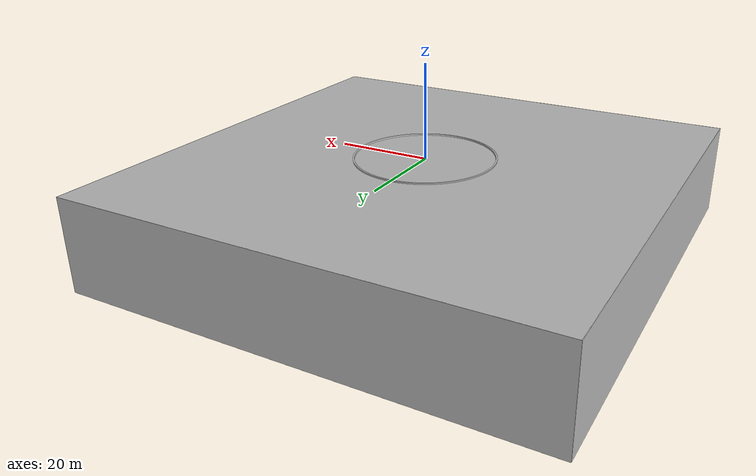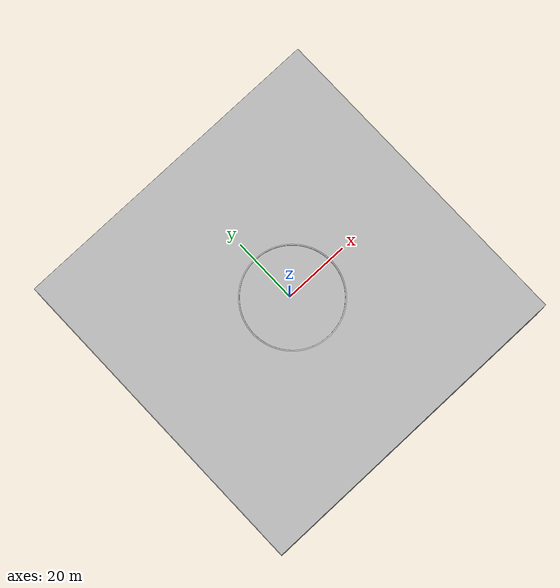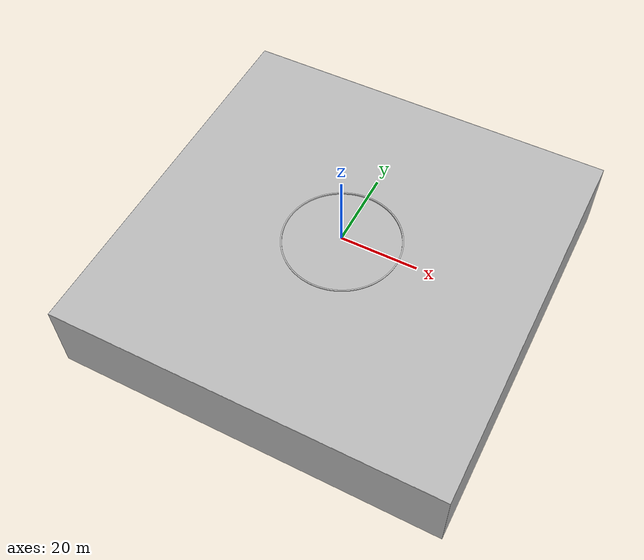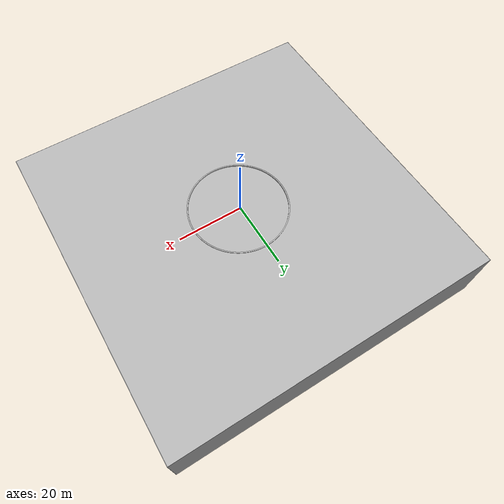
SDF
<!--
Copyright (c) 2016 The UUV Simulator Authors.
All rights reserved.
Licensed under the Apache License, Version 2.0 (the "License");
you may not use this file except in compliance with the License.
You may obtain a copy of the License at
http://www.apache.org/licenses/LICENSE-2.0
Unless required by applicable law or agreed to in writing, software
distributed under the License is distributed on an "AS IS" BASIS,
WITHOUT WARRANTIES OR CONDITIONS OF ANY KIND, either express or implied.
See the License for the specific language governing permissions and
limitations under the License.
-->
<?xml version="1.0" ?>
<sdf version="1.5">
  <world name="empty_underwater">
    <physics name="default_physics" default="true" type="ode">
      <max_step_size>0.002</max_step_size>
      <real_time_factor>1</real_time_factor>
      <real_time_update_rate>500</real_time_update_rate>
      <ode>
        <solver>
          <type>quick</type>
          <iters>50</iters>
          <sor>0.5</sor>
        </solver>
      </ode>
    </physics>
    <scene>
      <ambient>0.01 0.01 0.01 1.0</ambient>
      <sky>
        <clouds>
          <speed>12</speed>
        </clouds>
      </sky>
      <shadows>1</shadows>
      <fog>
        <color>0.1 0.2 0.3 1.0</color>
        <type>linear</type>
        <density>0.001</density>
        <start>10</start>
        <end>200</end>
      </fog>
    </scene>

    <!-- Origin placed somewhere in the middle of the North Sea  -->
    <spherical_coordinates>
      <latitude_deg>56.71897669633431</latitude_deg>
      <longitude_deg>3.515625</longitude_deg>
    </spherical_coordinates>

    <!-- Global light source -->
    <include>
      <uri>model://sun</uri>
    </include>

<!--Permanently placed model -->

    <include>
      <uri>model://basin_pool</uri>
    </include>

    <!-- Bounding box with sea surface -->
    <include>
      <uri>model://ocean_box</uri>
      <pose>0 0 0 0 0 0</pose>
    </include>

    <plugin name="underwater_current_plugin" filename="libuuv_underwater_current_ros_plugin.so">
      <namespace>hydrodynamics</namespace>
      <constant_current>
        <topic>current_velocity</topic>
        <velocity>
          <mean>0</mean>
          <min>0</min>
          <max>5</max>
          <mu>0.0</mu>
          <noiseAmp>0.0</noiseAmp>
        </velocity>

        <horizontal_angle>
          <mean>0</mean>
          <min>-3.141592653589793238</min>
          <max>3.141592653589793238</max>
          <mu>0.0</mu>
          <noiseAmp>0.0</noiseAmp>
        </horizontal_angle>

        <vertical_angle>
          <mean>0</mean>
          <min>-3.141592653589793238</min>
          <max>3.141592653589793238</max>
          <mu>0.0</mu>
          <noiseAmp>0.0</noiseAmp>
        </vertical_angle>
      </constant_current>
    </plugin>

    <plugin name="sc_interface" filename="libuuv_sc_ros_interface_plugin.so"/>

  </world>
</sdf>

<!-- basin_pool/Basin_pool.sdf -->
<sdf version='1.5'>

  <model name='cybernetic_pool'>
    <pose>0 0 0.1 0 0 0</pose>
    <self_collide> 0 </self_collide>
    <static> 1</static>

    <link name='pool'>
      <pose>0 0 0.1 0 0 0</pose>
      <visual name='pool_visual'>
        <geometry>
            <mesh><uri>file://basin_pool/basin_pool.dae</uri></mesh>
        </geometry>
        <material>
          <script>
            <uri>file://Media/materials/scripts/sand.material</uri>
            <name>UUVSimulator/SandAndStones</name>
          </script>
          <emissive>
            0.2 0.2 0.2 1.0
          </emissive>
        </material>
      </visual>
      <collision name='pool_collision'>
        <geometry>
            <mesh><uri>file://basin_pool/basin_pool.dae</uri></mesh>
        </geometry>
      </collision>
    </link>

  </model>
</sdf>

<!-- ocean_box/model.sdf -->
<!--
     Written by Kristoffer Rakstad Solberg, Student
     Copyright (c) 2019 Manta AUV, Vortex NTNU.
     All rights reserved.
-->

<sdf version="1.5">
  <model name="ocean_box">
    <static>true</static>
    <link name="link">
      <visual name="ground">
        <cast_shadows>false</cast_shadows>
        <pose>0 0 -20 0 0 0</pose>
        <geometry>
          <box>
            <size>100 100 .1</size>
          </box>
        </geometry>
        <material>
          <script>
            <uri>file://media/materials/scripts/sand.material</uri>
            <name>UUVSimulator/SandAndStones</name>
          </script>
        </material>
      </visual>

      <collision name="ground">
        <pose>0 0 -20 0 0 0</pose>
        <geometry>
          <box>
            <size>100 100 .1</size>
          </box>
        </geometry>
      </collision>

      <visual name="surface">
	<pose>0 0 0 0 0 0</pose>
        <cast_shadows>false</cast_shadows>
        <geometry>
          <mesh>
            <uri>file://media/models/sea_surface_1000m_x_1000m.dae</uri>
            <scale>0.1 0.1 0.05</scale>
          </mesh>
        </geometry>
        <material>
          <script>
            <uri>file://media/materials/scripts/waves.material</uri>
            <name>UUVSimulator/SimpleWaves</name>
          </script>
        </material>
      </visual>

      <visual name="north">
        <cast_shadows>false</cast_shadows>
        <pose>50 0 -10 0 0 0</pose>
        <geometry>
          <box>
            <size>.1 100 20</size>
          </box>
        </geometry>
        <material>
          <script>
            <uri>file://media/materials/scripts/water.material</uri>
            <name>UUVSimulator/SeaWall</name>
          </script>
        </material>
      </visual>

      <visual name="south">
        <cast_shadows>false</cast_shadows>
        <pose>-50 0 -10 0 0 0</pose>
        <geometry>
          <box>
            <size>.1 100 20</size>
          </box>
        </geometry>
        <material>
          <script>
            <uri>file://media/materials/scripts/water.material</uri>
            <name>UUVSimulator/SeaWall</name>
          </script>
        </material>
      </visual>

      <visual name="east">
        <cast_shadows>false</cast_shadows>
        <pose>0 -50 -10 0 0 0</pose>
        <geometry>
          <box>
            <size>100 .1 20</size>
          </box>
        </geometry>
        <material>
          <script>
            <uri>file://media/materials/scripts/water.material</uri>
            <name>UUVSimulator/SeaWall</name>
          </script>
        </material>
      </visual>

      <visual name="west">
        <cast_shadows>false</cast_shadows>
        <pose>0 50 -10 0 0 0</pose>
        <geometry>
          <box>
            <size>100 .1 20</size>
          </box>
        </geometry>
        <material>
          <script>
            <uri>file://media/materials/scripts/water.material</uri>
            <name>UUVSimulator/SeaWall</name>
          </script>
        </material>
      </visual>
    </link>
  </model>
</sdf>
